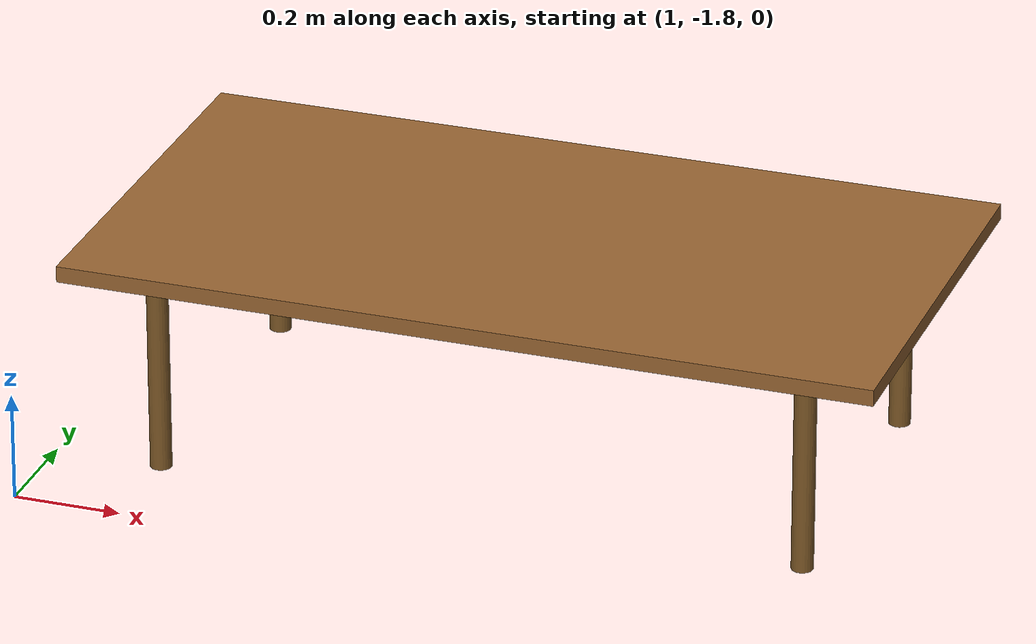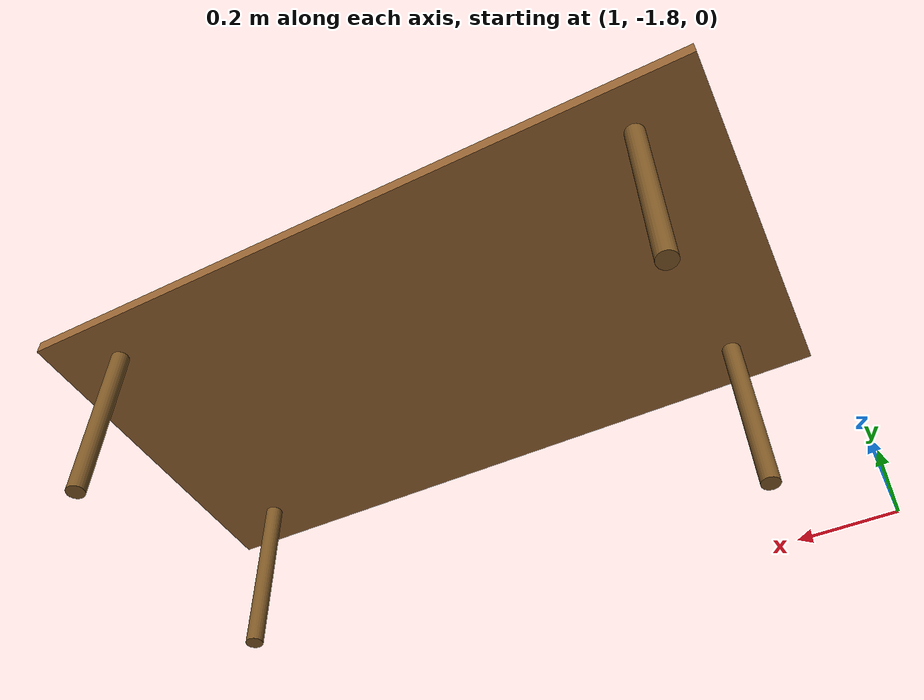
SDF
<?xml version="1.0" ?>
<sdf version="1.5">

    <!-- Add a simple table -->
    <model name="table">
      <pose>1.8 -1.3 0 0 0 0</pose>
      <static>true</static>

      <!-- Table top -->
      <link name="table_top">
        <pose>0 0 0.4 0 0 0</pose>
        <collision name="collision">
          <geometry>
            <box>
              <size>1.5 0.8 0.03</size>
            </box>
          </geometry>
        </collision>
        <visual name="visual">
          <geometry>
            <box>
              <size>1.5 0.8 0.03</size>
            </box>
          </geometry>
          <material>
            <ambient>0.6 0.4 0.2 1</ambient>
            <diffuse>0.6 0.4 0.2 1</diffuse>
            <specular>0.1 0.1 0.1 1</specular>
          </material>
        </visual>
      </link>

      <!-- Leg 1 -->
      <link name="leg1">
        <pose>0.6 0.3 0.2 0 0 0</pose>
        <collision name="collision">
          <geometry>
            <cylinder>
              <radius>0.02</radius>
              <length>0.4</length>
            </cylinder>
          </geometry>
        </collision>
        <visual name="visual">
          <geometry>
            <cylinder>
              <radius>0.02</radius>
              <length>0.4</length>
            </cylinder>
          </geometry>
          <material>
            <ambient>0.5 0.35 0.15 1</ambient>
            <diffuse>0.5 0.35 0.15 1</diffuse>
            <specular>0.1 0.1 0.1 1</specular>
          </material>
        </visual>
      </link>

      <!-- Leg 2 -->
      <link name="leg2">
        <pose>-0.6 0.3 0.2 0 0 0</pose>
        <collision name="collision">
          <geometry>
            <cylinder>
              <radius>0.02</radius>
              <length>0.4</length>
            </cylinder>
          </geometry>
        </collision>
        <visual name="visual">
          <geometry>
            <cylinder>
              <radius>0.02</radius>
              <length>0.4</length>
            </cylinder>
          </geometry>
          <material>
            <ambient>0.5 0.35 0.15 1</ambient>
            <diffuse>0.5 0.35 0.15 1</diffuse>
            <specular>0.1 0.1 0.1 1</specular>
          </material>
        </visual>
      </link>

      <!-- Leg 3 -->
      <link name="leg3">
        <pose>0.6 -0.3 0.2 0 0 0</pose>
        <collision name="collision">
          <geometry>
            <cylinder>
              <radius>0.02</radius>
              <length>0.4</length>
            </cylinder>
          </geometry>
        </collision>
        <visual name="visual">
          <geometry>
            <cylinder>
              <radius>0.02</radius>
              <length>0.4</length>
            </cylinder>
          </geometry>
          <material>
            <ambient>0.5 0.35 0.15 1</ambient>
            <diffuse>0.5 0.35 0.15 1</diffuse>
            <specular>0.1 0.1 0.1 1</specular>
          </material>
        </visual>
      </link>

      <!-- Leg 4 -->
      <link name="leg4">
        <pose>-0.6 -0.3 0.2 0 0 0</pose>
        <collision name="collision">
          <geometry>
            <cylinder>
              <radius>0.02</radius>
              <length>0.4</length>
            </cylinder>
          </geometry>
        </collision>
        <visual name="visual">
          <geometry>
            <cylinder>
              <radius>0.02</radius>
              <length>0.4</length>
            </cylinder>
          </geometry>
          <material>
            <ambient>0.5 0.35 0.15 1</ambient>
            <diffuse>0.5 0.35 0.15 1</diffuse>
            <specular>0.1 0.1 0.1 1</specular>
          </material>
        </visual>
      </link>
    </model>

</sdf>
